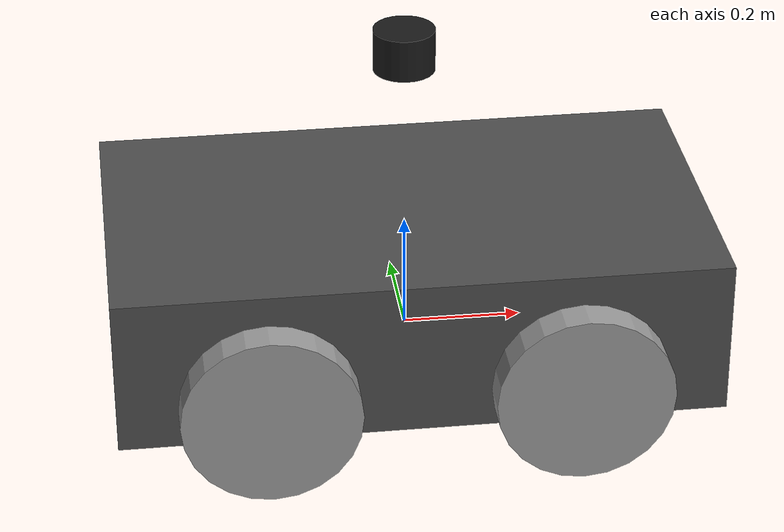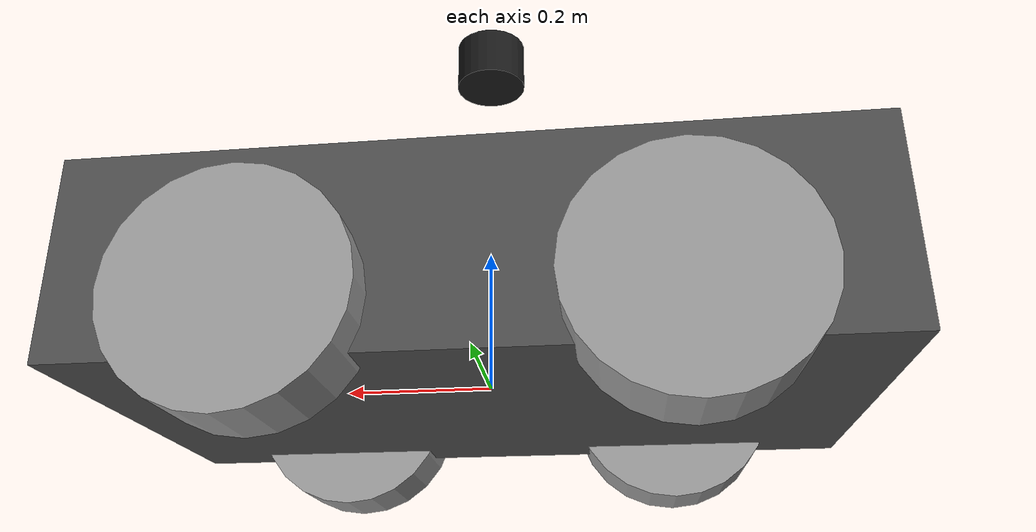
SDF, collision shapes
<?xml version="1.0" ?>
<sdf version="1.5">
  <model name="husky">

    <!-- Main Chassis -->
    <link name="base_link">
      <visual name='lidar_mast'>
        <pose>0.0000 0 0.351695 0 0 0</pose>
        <geometry><cylinder><radius>0.020</radius><length>0.26340</length></cylinder></geometry>
        <material><ambient>0.3 0.3 0.3 1</ambient><diffuse>0.3 0.3 0.3 1</diffuse></material>
      </visual>
      <visual name='camera_mast'>
        <pose>0.3543 0 0.311325 0 0 0</pose>
        <geometry><cylinder><radius>0.010</radius><length>0.18265</length></cylinder></geometry>
        <material><ambient>0.3 0.3 0.3 1</ambient><diffuse>0.3 0.3 0.3 1</diffuse></material>
      </visual>
      <!-- Physics -->
      <collision name="collision">
        <pose>0 0 0.1 0 0 0</pose>
        <geometry>
          <box>
            <size>1.0074 0.5709 0.2675</size>
          </box>
        </geometry>
      </collision>
      <inertial>
        <mass>33.676038</mass>
        <pose>-0.08547031 -0.0008396822 0.2382033 0 0 0</pose>
        <inertia>
          <ixx>2.22213834</ixx>
          <ixy>-0.0235134405</ixy>
          <ixz>0.272767519</ixz>
          <iyy>3.40844991</iyy>
          <iyz>0.0023811513</iyz>
          <izz>2.11432214</izz>
        </inertia>
      </inertial>

      <!-- Visual -->
      <!-- Base frame -->
      <visual name="base">
        <pose>0 0 0 0 0 0</pose>
        <geometry>
          <mesh>
            <uri>model://husky/meshes/base_link.stl</uri>
          </mesh>
        </geometry>
        <material>
          <script>
            <name>Gazebo/FlatBlack</name>
          </script>
        </material>
      </visual>

      <!-- Top Plate -->
      <visual name="top_plate">
        <pose>0 0 0 0 0 0</pose>
        <geometry>
          <mesh>
            <uri>model://husky/meshes/top_plate.stl</uri>
          </mesh>
        </geometry>
        <material>
          <script>
            <name>Gazebo/Yellow</name>
          </script>
        </material>
      </visual>

      <!-- Front Bumper -->
      <visual name="front_bumper">
        <pose>0.47 0 0.091 0 0 0</pose>
        <geometry>
          <mesh>
            <uri>model://husky/meshes/bumper.stl</uri>
          </mesh>
        </geometry>
        <material>
          <script>
            <name>Gazebo/FlatBlack</name>
          </script>
        </material>
      </visual>

      <!-- Rear Bumper -->
      <visual name="rear_bumper">
        <pose>-0.47 0 0.091 0 0 3.141</pose>
        <geometry>
          <mesh>
            <uri>model://husky/meshes/bumper.stl</uri>
          </mesh>
        </geometry>
        <material>
          <script>
            <name>Gazebo/FlatBlack</name>
          </script>
        </material>
      </visual>

      <!-- User Rail -->
      <visual name="user_rail">
        <pose>0.272 0 0.245 0 0 0</pose>
        <geometry>
          <mesh>
            <uri>model://husky/meshes/user_rail.stl</uri>
          </mesh>
        </geometry>
        <material>
          <script>
            <name>Gazebo/Grey</name>
          </script>
        </material>
      </visual>

      <!-- ================= CAMARA ================= -->
      <visual name='camera_visual'>
        <pose>0.3543 0 0.41765 0 0 0</pose>
        <geometry>
          <box>
            <size>0.03 0.08 0.03</size>
          </box>
        </geometry>
        <material>
          <ambient>0.1 0.1 0.1 1</ambient>
          <diffuse>0.1 0.1 0.1 1</diffuse>
        </material>
      </visual>

      <sensor name='camera_sensor' type='camera'>
        <pose>0.3543 0 0.41765 0 0 0</pose>
        <update_rate>10</update_rate>
        <camera name='head'>
          <horizontal_fov>1.3962634</horizontal_fov>
          <image>
            <width>640</width>
            <height>480</height>
            <format>R8G8B8</format>
          </image>
          <clip>
            <near>0.02</near>
            <far>300</far>
          </clip>
          <noise>
            <type>gaussian</type>
            <mean>0.0</mean>
            <stddev>0.007</stddev>
          </noise>
        </camera>
        <plugin name='camera_controller' filename='libgazebo_ros_camera.so'>
          <alwaysOn>true</alwaysOn>
          <updateRate>0.0</updateRate>
          <cameraName>camera</cameraName>
          <imageTopicName>/camera/image_raw</imageTopicName>
          <cameraInfoTopicName>/camera/camera_info</cameraInfoTopicName>
          <frameName>husky/camera_optical_frame</frameName>
          <hackBaseline>0.07</hackBaseline>
          <distortionK1>0.0</distortionK1>
          <distortionK2>0.0</distortionK2>
          <distortionK3>0.0</distortionK3>
          <distortionT1>0.0</distortionT1>
          <distortionT2>0.0</distortionT2>
        </plugin>
      </sensor>
    </link>

    <!-- ================= VELODYNE VLP-16 LIDAR ================= -->
    <link name="velodyne_base_link">
      <pose>0 0 0.51925 0 0 0</pose>
      <inertial>
        <mass>0.825345</mass>
        <pose>0 0 0 0 0 0</pose>
        <inertia>
          <ixx>0.000902966634</ixx>
          <ixy>0</ixy>
          <ixz>0</ixz>
          <iyy>0.000902966634</iyy>
          <iyz>0</iyz>
          <izz>0.00109876529</izz>
        </inertia>
      </inertial>

      <!-- Visual del Velodyne -->
      <collision name='velodyne_base_collision'>
        <geometry>
          <cylinder>
            <radius>0.0516</radius>
            <length>0.0717</length>
          </cylinder>
        </geometry>
      </collision>

      <visual name='velodyne_base_visual'>
        <geometry>
          <cylinder>
            <radius>0.0516</radius>
            <length>0.0717</length>
          </cylinder>
        </geometry>
        <material>
          <ambient>0.1 0.1 0.1 1</ambient>
          <diffuse>0.1 0.1 0.1 1</diffuse>
          <specular>0.1 0.1 0.1 1</specular>
        </material>
      </visual>

      <!-- Sensor LiDAR Velodyne VLP-16 -->
      <sensor name='velodyne-VLP16' type='gpu_ray'>
        <pose>0 0 0.0377 0 0 0</pose>
        <visualize>false</visualize>
        <update_rate>10</update_rate>
        <ray>
          <scan>
            <horizontal>
              <samples>1875</samples>
              <resolution>1</resolution>
              <min_angle>-3.14159</min_angle>
              <max_angle>3.14159</max_angle>
            </horizontal>
            <vertical>
              <samples>16</samples>
              <resolution>1</resolution>
              <min_angle>-0.261799</min_angle>
              <max_angle>0.261799</max_angle>
            </vertical>
          </scan>
          <range>
            <min>0.3</min>
            <max>101.0</max>
            <resolution>0.001</resolution>
          </range>
          <noise>
            <type>gaussian</type>
            <mean>0.0</mean>
            <stddev>0.011314</stddev>
          </noise>
        </ray>

        <plugin name='gazebo_ros_laser_controller' filename='libgazebo_ros_velodyne_gpu_laser.so'>
          <topicName>/velodyne_points</topicName>
          <frameName>husky/velodyne_base_link</frameName>
          <min_range>0.9</min_range>
          <max_range>100.0</max_range>
          <gaussianNoise>0.0</gaussianNoise>
        </plugin>
      </sensor>
    </link>

    <!-- Joint para montar el Velodyne al Husky -->
    <joint name='velodyne_base_mount_joint' type='fixed'>
      <parent>base_link</parent>
      <child>velodyne_base_link</child>
    </joint>

    <!-- ================= IMU SENSOR ================= -->
    <link name='imu_link'>
      <!-- MUST MATCH el imu_joint de urdf_xacro/husky.urdf.xacro y la copia
           de model/model.sdf.  CM del husky sin el IMU, en base_link. -->
      <pose>-0.063983 -0.000629 0.196003 0 0 0</pose>
      <inertial>
        <mass>0.0149159</mass>
        <inertia>
          <ixx>3.60467583e-06</ixx>
          <ixy>0</ixy>
          <ixz>0</ixz>
          <iyy>3.60467583e-06</iyy>
          <iyz>0</iyz>
          <izz>6.21495833e-06</izz>
        </inertia>
      </inertial>

      <collision name='imu_collision'>
        <geometry>
          <box>
            <size>0.05 0.05 0.02</size>
          </box>
        </geometry>
      </collision>

      <visual name='imu_visual'>
        <geometry>
          <box>
            <size>0.05 0.05 0.02</size>
          </box>
        </geometry>
        <material>
          <ambient>0.3 0.3 0.3 1</ambient>
          <diffuse>0.3 0.3 0.3 1</diffuse>
        </material>
      </visual>

      <!-- Sensor IMU -->
      <sensor name='imu_sensor' type='imu'>
        <always_on>1</always_on>
        <update_rate>100</update_rate>
        <visualize>true</visualize>
        <imu>
          <angular_velocity>
            <x>
              <noise type='gaussian'>
                <mean>0</mean>
                <stddev>0.009</stddev>
                <bias_mean>0.00075</bias_mean>
                <bias_stddev>0.005</bias_stddev>
                <dynamic_bias_stddev>0.00002</dynamic_bias_stddev>
                <dynamic_bias_correlation_time>400.0</dynamic_bias_correlation_time>
                <precision>0.00025</precision>
              </noise>
            </x>
            <y>
              <noise type='gaussian'>
                <mean>0</mean>
                <stddev>0.009</stddev>
                <bias_mean>0.00075</bias_mean>
                <bias_stddev>0.005</bias_stddev>
                <dynamic_bias_stddev>0.00002</dynamic_bias_stddev>
                <dynamic_bias_correlation_time>400.0</dynamic_bias_correlation_time>
                <precision>0.00025</precision>
              </noise>
            </y>
            <z>
              <noise type='gaussian'>
                <mean>0</mean>
                <stddev>0.009</stddev>
                <bias_mean>0.00075</bias_mean>
                <bias_stddev>0.005</bias_stddev>
                <dynamic_bias_stddev>0.00002</dynamic_bias_stddev>
                <dynamic_bias_correlation_time>400.0</dynamic_bias_correlation_time>
                <precision>0.00025</precision>
              </noise>
            </z>
          </angular_velocity>
          <linear_acceleration>
            <x>
              <noise type='gaussian'>
                <mean>0</mean>
                <stddev>0.021</stddev>
                <bias_mean>0.05</bias_mean>
                <bias_stddev>0.0075</bias_stddev>
                <dynamic_bias_stddev>0.000375</dynamic_bias_stddev>
                <dynamic_bias_correlation_time>175.0</dynamic_bias_correlation_time>
                <precision>0.005</precision>
              </noise>
            </x>
            <y>
              <noise type='gaussian'>
                <mean>0</mean>
                <stddev>0.021</stddev>
                <bias_mean>0.05</bias_mean>
                <bias_stddev>0.0075</bias_stddev>
                <dynamic_bias_stddev>0.000375</dynamic_bias_stddev>
                <dynamic_bias_correlation_time>175.0</dynamic_bias_correlation_time>
                <precision>0.005</precision>
              </noise>
            </y>
            <z>
              <noise type='gaussian'>
                <mean>0</mean>
                <stddev>0.021</stddev>
                <bias_mean>0.05</bias_mean>
                <bias_stddev>0.0075</bias_stddev>
                <dynamic_bias_stddev>0.000375</dynamic_bias_stddev>
                <dynamic_bias_correlation_time>175.0</dynamic_bias_correlation_time>
                <precision>0.005</precision>
              </noise>
            </z>
          </linear_acceleration>
        </imu>

        <plugin name='imu_plugin' filename='libgazebo_ros_imu_sensor.so'>
          <topicName>/imu/data_raw</topicName>
          <bodyName>imu_link</bodyName>
          <updateRateHZ>100.0</updateRateHZ>
          <gaussianNoise>0.0</gaussianNoise>
          <xyzOffset>0 0 0</xyzOffset>
          <rpyOffset>0 0 0</rpyOffset>
          <frameName>husky/imu_link</frameName>
          <initialOrientationAsReference>false</initialOrientationAsReference>
        </plugin>
      </sensor>
    </link>

    <joint name='imu_joint' type='fixed'>
      <parent>base_link</parent>
      <child>imu_link</child>
    </joint>

    <!-- ================= WHEELS ================= -->

    <!-- Back Left Wheel -->
    <link name="back_left_wheel">
      <pose>-0.256 0.285475 0.035 0 0 0</pose>
      <inertial>
        <mass>2.62092</mass>
        <pose>0 0 0 0 0 0</pose>
        <inertia>
          <ixx>0.0245304</ixx>
          <ixy>0</ixy>
          <ixz>0</ixz>
          <iyy>0.0245304</iyy>
          <iyz>0</iyz>
          <izz>0.0438584</izz>
        </inertia>
      </inertial>
      <collision name="back_left_wheel_collision">
        <pose>0 0 0 -1.5707 0 0</pose>
        <geometry>
          <cylinder>
            <radius>0.148</radius>
            <length>0.1143</length>
          </cylinder>
        </geometry>
        <surface>
          <friction>
            <ode>
              <mu>1.0</mu>
              <mu2>0.75</mu2>
              <fdir1>1 0 0</fdir1>
              <slip1>0.0</slip1>
              <slip2>0.0</slip2>
            </ode>
          </friction>
          <contact>
            <ode>
              <kp>1000000.0</kp>
              <kd>1.0</kd>
              <min_depth>0.003</min_depth>
              <max_vel>1.0</max_vel>
            </ode>
          </contact>
        </surface>
      </collision>
      <visual name="back_left_wheel">
        <pose>0 0 0 -3.14159 0 0</pose>
        <geometry>
          <mesh>
            <uri>model://husky/meshes/wheel.stl</uri>
            <!-- ESCALA ANISOTROPA: encoge el radio a 0.148 y deja
                 la anchura de llanta en 0.1143, que es comun a las tres -->
            <scale>0.832396 1.0 0.832396</scale>
          </mesh>
        </geometry>
        <material>
          <script>
            <name>Gazebo/Grey</name>
          </script>
        </material>
      </visual>
    </link>

    <joint name="back_left_joint" type="revolute">
      <parent>base_link</parent>
      <child>back_left_wheel</child>
      <axis>
        <xyz>0 1 0</xyz>
        <use_parent_model_frame>true</use_parent_model_frame>
      </axis>
      <physics>
        <ode>
          <limit>
            <cfm>0.000000</cfm>
            <erp>0.900000</erp>
          </limit>
        </ode>
      </physics>
    </joint>

    <!-- Back Right Wheel -->
    <link name="back_right_wheel">
      <pose>-0.256 -0.285475 0.035 0 0 0</pose>
      <inertial>
        <mass>2.62092</mass>
        <pose>0 0 0 0 0 0</pose>
        <inertia>
          <ixx>0.0245304</ixx>
          <ixy>0</ixy>
          <ixz>0</ixz>
          <iyy>0.0245304</iyy>
          <iyz>0</iyz>
          <izz>0.0438584</izz>
        </inertia>
      </inertial>
      <collision name="back_right_wheel_collision">
        <pose>0 0 0 -1.5707 0 0</pose>
        <geometry>
          <cylinder>
            <radius>0.148</radius>
            <length>0.1143</length>
          </cylinder>
        </geometry>
        <surface>
          <friction>
            <ode>
              <mu>1.0</mu>
              <mu2>0.75</mu2>
              <fdir1>1 0 0</fdir1>
              <slip1>0.0</slip1>
              <slip2>0.0</slip2>
            </ode>
          </friction>
          <contact>
            <ode>
              <kp>1000000.0</kp>
              <kd>1.0</kd>
              <min_depth>0.003</min_depth>
              <max_vel>1.0</max_vel>
            </ode>
          </contact>
        </surface>
      </collision>
      <visual name="back_right_wheel">
        <pose>0 0 0 -3.14159 0 0</pose>
        <geometry>
          <mesh>
            <uri>model://husky/meshes/wheel.stl</uri>
            <!-- ESCALA ANISOTROPA: encoge el radio a 0.148 y deja
                 la anchura de llanta en 0.1143, que es comun a las tres -->
            <scale>0.832396 1.0 0.832396</scale>
          </mesh>
        </geometry>
        <material>
          <script>
            <name>Gazebo/Grey</name>
          </script>
        </material>
      </visual>
    </link>

    <joint name="back_right_joint" type="revolute">
      <parent>base_link</parent>
      <child>back_right_wheel</child>
      <axis>
        <xyz>0 1 0</xyz>
        <use_parent_model_frame>true</use_parent_model_frame>
      </axis>
      <physics>
        <ode>
          <limit>
            <cfm>0.000000</cfm>
            <erp>0.900000</erp>
          </limit>
        </ode>
      </physics>
    </joint>

    <!-- Front Left Wheel -->
    <link name="front_left_wheel">
      <pose>0.256 0.285475 0.035 0 0 0</pose>
      <inertial>
        <mass>2.62092</mass>
        <pose>0 0 0 0 0 0</pose>
        <inertia>
          <ixx>0.0245304</ixx>
          <ixy>0</ixy>
          <ixz>0</ixz>
          <iyy>0.0245304</iyy>
          <iyz>0</iyz>
          <izz>0.0438584</izz>
        </inertia>
      </inertial>
      <collision name="front_left_wheel_collision">
        <pose>0 0 0 -1.5707 0 0</pose>
        <geometry>
          <cylinder>
            <radius>0.148</radius>
            <length>0.1143</length>
          </cylinder>
        </geometry>
        <surface>
          <friction>
            <ode>
              <mu>1.0</mu>
              <mu2>0.75</mu2>
              <fdir1>1 0 0</fdir1>
              <slip1>0.0</slip1>
              <slip2>0.0</slip2>
            </ode>
          </friction>
          <contact>
            <ode>
              <kp>1000000.0</kp>
              <kd>1.0</kd>
              <min_depth>0.003</min_depth>
              <max_vel>1.0</max_vel>
            </ode>
          </contact>
        </surface>
      </collision>
      <visual name="front_left_wheel">
        <pose>0 0 0 -3.14159 0 0</pose>
        <geometry>
          <mesh>
            <uri>model://husky/meshes/wheel.stl</uri>
            <!-- ESCALA ANISOTROPA: encoge el radio a 0.148 y deja
                 la anchura de llanta en 0.1143, que es comun a las tres -->
            <scale>0.832396 1.0 0.832396</scale>
          </mesh>
        </geometry>
        <material>
          <script>
            <name>Gazebo/Grey</name>
          </script>
        </material>
      </visual>
    </link>

    <joint name="front_left_joint" type="revolute">
      <parent>base_link</parent>
      <child>front_left_wheel</child>
      <axis>
        <xyz>0 1 0</xyz>
        <use_parent_model_frame>true</use_parent_model_frame>
      </axis>
      <physics>
        <ode>
          <limit>
            <cfm>0.000000</cfm>
            <erp>0.900000</erp>
          </limit>
        </ode>
      </physics>
    </joint>

    <!-- Front Right Wheel -->
    <link name="front_right_wheel">
      <pose>0.256 -0.285475 0.035 0 0 0</pose>
      <inertial>
        <mass>2.62092</mass>
        <pose>0 0 0 0 0 0</pose>
        <inertia>
          <ixx>0.0245304</ixx>
          <ixy>0</ixy>
          <ixz>0</ixz>
          <iyy>0.0245304</iyy>
          <iyz>0</iyz>
          <izz>0.0438584</izz>
        </inertia>
      </inertial>
      <collision name="front_right_wheel_collision">
        <pose>0 0 0 -1.5707 0 0</pose>
        <geometry>
          <cylinder>
            <radius>0.148</radius>
            <length>0.1143</length>
          </cylinder>
        </geometry>
        <surface>
          <friction>
            <ode>
              <mu>1.0</mu>
              <mu2>0.75</mu2>
              <fdir1>1 0 0</fdir1>
              <slip1>0.0</slip1>
              <slip2>0.0</slip2>
            </ode>
          </friction>
          <contact>
            <ode>
              <kp>1000000.0</kp>
              <kd>1.0</kd>
              <min_depth>0.003</min_depth>
              <max_vel>1.0</max_vel>
            </ode>
          </contact>
        </surface>
      </collision>
      <visual name="front_right_wheel">
        <pose>0 0 0 -3.14159 0 0</pose>
        <geometry>
          <mesh>
            <uri>model://husky/meshes/wheel.stl</uri>
            <!-- ESCALA ANISOTROPA: encoge el radio a 0.148 y deja
                 la anchura de llanta en 0.1143, que es comun a las tres -->
            <scale>0.832396 1.0 0.832396</scale>
          </mesh>
        </geometry>
        <material>
          <script>
            <name>Gazebo/Grey</name>
          </script>
        </material>
      </visual>
    </link>

    <joint name="front_right_joint" type="revolute">
      <parent>base_link</parent>
      <child>front_right_wheel</child>
      <axis>
        <xyz>0 1 0</xyz>
        <use_parent_model_frame>true</use_parent_model_frame>
      </axis>
      <physics>
        <ode>
          <limit>
            <cfm>0.000000</cfm>
            <erp>0.900000</erp>
          </limit>
        </ode>
      </physics>
    </joint>

    <!-- ================= CONTROLLER PLUGIN ================= -->
    <plugin name='gazebo_ros_control' filename='libgazebo_ros_control.so'>
      <robotNamespace>/husky</robotNamespace>
      <robotSimType>gazebo_ros_control/DefaultRobotHWSim</robotSimType>
      <legacyModeNS>false</legacyModeNS>
    </plugin>

  </model>
</sdf>
